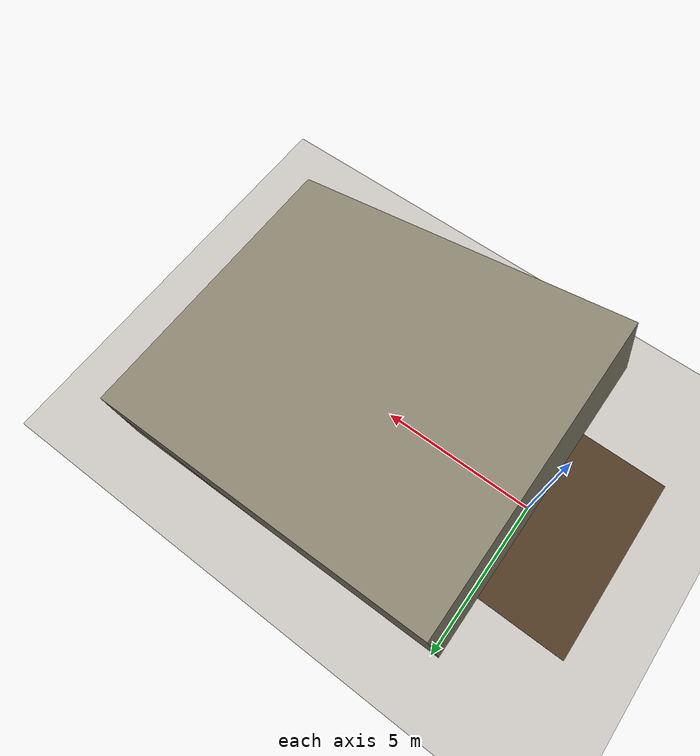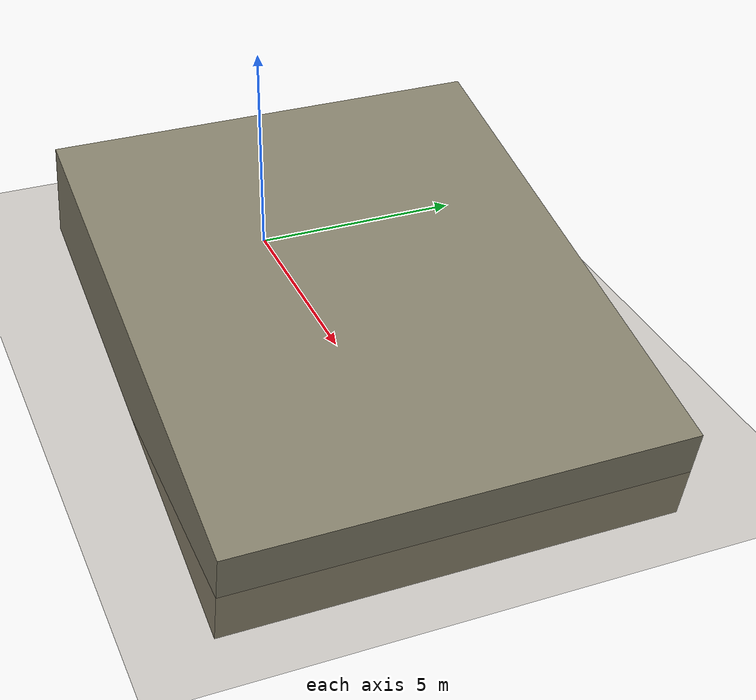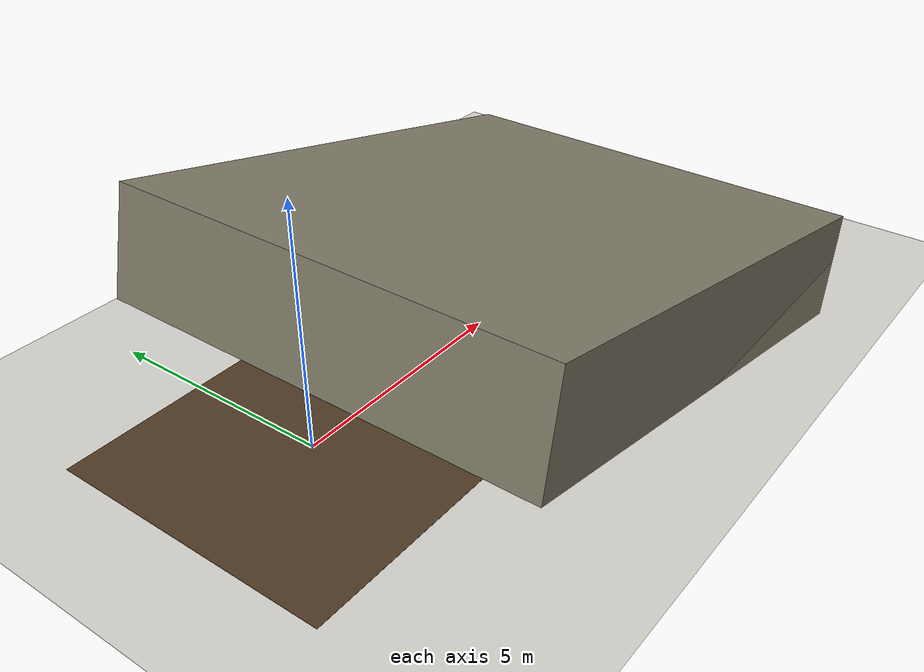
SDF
<?xml version="1.0" ?>
<sdf version="1.11">
  <world name="battlefield_slope">
    <physics name="1ms" type="ignored"><max_step_size>0.001</max_step_size><real_time_factor>0.7</real_time_factor></physics>
    <plugin filename="gz-sim-physics-system" name="gz::sim::systems::Physics"/>
    <plugin filename="gz-sim-scene-broadcaster-system" name="gz::sim::systems::SceneBroadcaster"/>
    <plugin filename="gz-sim-user-commands-system" name="gz::sim::systems::UserCommands"/>
    <plugin filename="gz-sim-sensors-system" name="gz::sim::systems::Sensors"><render_engine>ogre2</render_engine></plugin>
    <light type="directional" name="sun"><cast_shadows>true</cast_shadows><pose>0 0 10 0 0 0</pose><diffuse>0.95 0.95 0.9 1</diffuse><direction>-0.5 0.1 -0.9</direction></light>
    <model name="ground_plane"><static>true</static><link name="link"><collision name="c"><geometry><plane><normal>0 0 1</normal><size>200 200</size></plane></geometry></collision><visual name="v"><geometry><plane><normal>0 0 1</normal><size>200 200</size></plane></geometry><material><ambient>0.44 0.40 0.33 1</ambient><diffuse>0.44 0.40 0.33 1</diffuse></material></visual></link></model>
    <model name="hill"><pose>6 0 1.2 0 0.22 0</pose><static>true</static><link name="link"><collision name="c"><geometry><box><size>12 10 2.4</size></box></geometry></collision><visual name="v"><geometry><box><size>12 10 2.4</size></box></geometry><material><diffuse>0.52 0.50 0.42 1</diffuse></material></visual></link></model>
    <model name="mud_patch"><pose>0 0 0.02 0 0 0</pose><static>true</static><link name="link"><visual name="v"><geometry><plane><normal>0 0 1</normal><size>6 6</size></plane></geometry><material><diffuse>0.30 0.22 0.14 1</diffuse></material></visual></link></model>
  </world>
</sdf>
